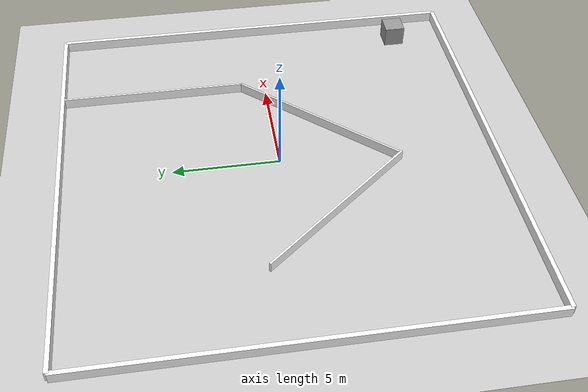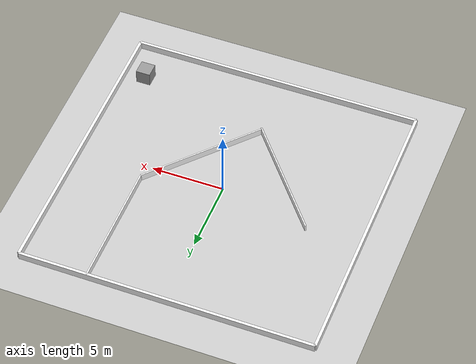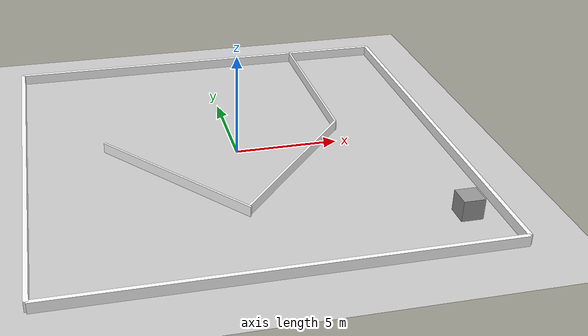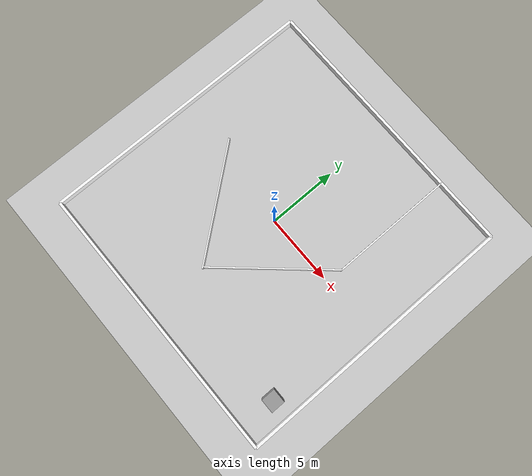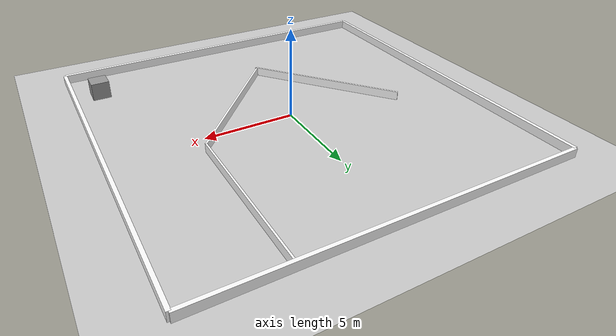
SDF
<sdf version="1.7">
 <world name="room20x20">
  <gravity>0 0 -9.81</gravity>
  <light name="sun" type="directional">
   <pose>0 0 10 0 -0 0</pose>
   <diffuse>0.8 0.8 0.8 1</diffuse>
   <specular>0.2 0.2 0.2 1</specular>
   <attenuation>
    <range>1000</range>
    <constant>0.9</constant>
    <linear>0.01</linear>
    <quadratic>0.001</quadratic>
   </attenuation>
   <direction>-0.5 0.1 -0.9</direction>
   <spot><inner_angle>0</inner_angle><outer_angle>0</outer_angle><falloff>0</falloff></spot>
  </light>
  <model name="ground_plane">
   <static>1</static>
   <link name="link">
    <collision name="collision">
     <geometry><plane><normal>0 0 1</normal><size>100 100</size></plane></geometry>
    </collision>
    <visual name="visual">
     <cast_shadows>0</cast_shadows>
     <geometry><plane><normal>0 0 1</normal><size>100 100</size></plane></geometry>
     <material>
      <script><uri>file://media/materials/scripts/gazebo.material</uri><name>Gazebo/Grey</name></script>
     </material>
    </visual>
   </link>
  </model>
  <model name="outer_walls">
   <static>1</static>
   <link name="walls">
    <collision name="north_col">
     <geometry><box><size>20.2 0.2 0.5</size></box></geometry>
     <pose>0 10.1 0.25 0 -0 0</pose>
    </collision>
    <visual name="north_vis">
     <geometry><box><size>20.2 0.2 0.5</size></box></geometry>
     <pose>0 10.1 0.25 0 -0 0</pose>
     <material><ambient>1 1 1 1</ambient><diffuse>1 1 1 1</diffuse></material>
    </visual>
    <collision name="south_col">
     <geometry><box><size>20.2 0.2 0.5</size></box></geometry>
     <pose>0 -10.1 0.25 0 -0 0</pose>
    </collision>
    <visual name="south_vis">
     <geometry><box><size>20.2 0.2 0.5</size></box></geometry>
     <pose>0 -10.1 0.25 0 -0 0</pose>
     <material><ambient>1 1 1 1</ambient><diffuse>1 1 1 1</diffuse></material>
    </visual>
    <collision name="east_col">
     <geometry><box><size>0.2 20.2 0.5</size></box></geometry>
     <pose>10.1 0 0.25 0 -0 0</pose>
    </collision>
    <visual name="east_vis">
     <geometry><box><size>0.2 20.2 0.5</size></box></geometry>
     <pose>10.1 0 0.25 0 -0 0</pose>
     <material><ambient>1 1 1 1</ambient><diffuse>1 1 1 1</diffuse></material>
    </visual>
    <collision name="west_col">
     <geometry><box><size>0.2 20.2 0.5</size></box></geometry>
     <pose>-10.1 0 0.25 0 -0 0</pose>
    </collision>
    <visual name="west_vis">
     <geometry><box><size>0.2 20.2 0.5</size></box></geometry>
     <pose>-10.1 0 0.25 0 -0 0</pose>
     <material><ambient>1 1 1 1</ambient><diffuse>1 1 1 1</diffuse></material>
    </visual>
   </link>
  </model>
  <model name="mid_vertical">
   <pose>2.37034 -2.1539 0 0 -0 2.41542</pose>
   <static>1</static>
   <link name="mid_v_link">
    <collision name="mid_v_col"><geometry><box><size>0.1 9 0.5</size></box></geometry></collision>
    <visual name="mid_v_vis">
     <geometry><box><size>0.1 9 0.5</size></box></geometry>
     <material><ambient>1 1 1 1</ambient><diffuse>1 1 1 1</diffuse></material>
    </visual>
    <pose>0 0 0.25 0 -0 0</pose>
   </link>
  </model>
  <magnetic_field>6e-06 2.3e-05 -4.2e-05</magnetic_field>
  <atmosphere type="adiabatic"/>
  <physics type="ode">
   <max_step_size>0.001</max_step_size>
   <real_time_factor>1</real_time_factor>
   <real_time_update_rate>1000</real_time_update_rate>
  </physics>
  <scene><ambient>0.4 0.4 0.4 1</ambient><background>0.7 0.7 0.7 1</background><shadows>1</shadows></scene>
  <audio><device>default</device></audio>
  <spherical_coordinates>
   <surface_model>EARTH_WGS84</surface_model>
   <latitude_deg>0</latitude_deg>
   <longitude_deg>0</longitude_deg>
   <elevation>0</elevation>
   <heading_deg>0</heading_deg>
  </spherical_coordinates>
  <model name="unit_box">
   <pose>8.60598 -7.45164 0.5 0 -0 0</pose>
   <link name="link">
    <inertial>
     <mass>1</mass>
     <inertia>
      <ixx>0.166667</ixx>
      <ixy>0</ixy>
      <ixz>0</ixz>
      <iyy>0.166667</iyy>
      <iyz>0</iyz>
      <izz>0.166667</izz>
     </inertia>
    </inertial>
    <collision name="collision"><geometry><box><size>1 1 1</size></box></geometry></collision>
    <visual name="visual">
     <geometry><box><size>1 1 1</size></box></geometry>
     <material>
      <script><name>Gazebo/Grey</name><uri>file://media/materials/scripts/gazebo.material</uri></script>
     </material>
    </visual>
   </link>
  </model>
  <model name="mid_vertical_clone_clone">
   <static>1</static>
   <link name="mid_v_link">
    <collision name="mid_v_col"><geometry><box><size>0.1 9 0.5</size></box></geometry></collision>
    <visual name="mid_v_vis">
     <geometry><box><size>0.1 9 0.5</size></box></geometry>
     <material><ambient>1 1 1 1</ambient><diffuse>1 1 1 1</diffuse></material>
    </visual>
    <pose>0 0 0.25 0 -0 0</pose>
   </link>
   <pose>5.35102 5.64709 0 0 -0 0</pose>
  </model>
  <model name="mid_vertical_clone_clone_0">
   <static>1</static>
   <link name="mid_v_link">
    <collision name="mid_v_col"><geometry><box><size>0.1 9 0.5</size></box></geometry></collision>
    <visual name="mid_v_vis">
     <geometry><box><size>0.1 9 0.5</size></box></geometry>
     <material><ambient>1 1 1 1</ambient><diffuse>1 1 1 1</diffuse></material>
    </visual>
    <pose>0 0 0.25 0 -0 0</pose>
   </link>
   <pose>-3.44033 -2.1658 0 0 -0 0.684715</pose>
  </model>
 </world>
</sdf>
